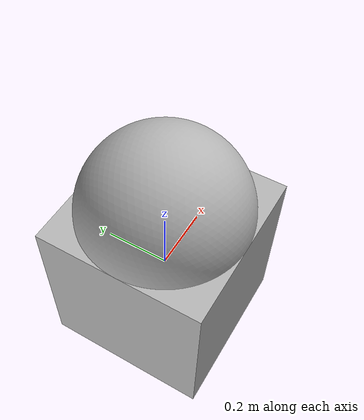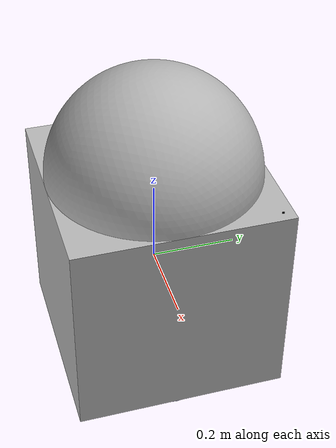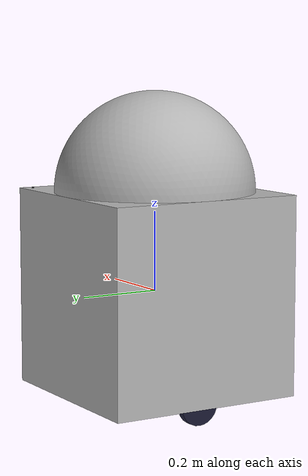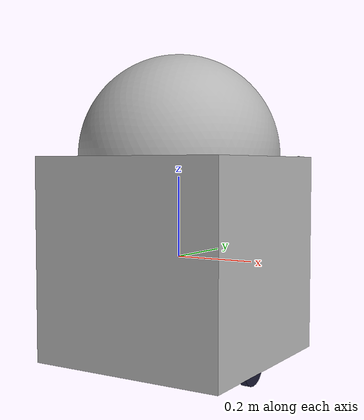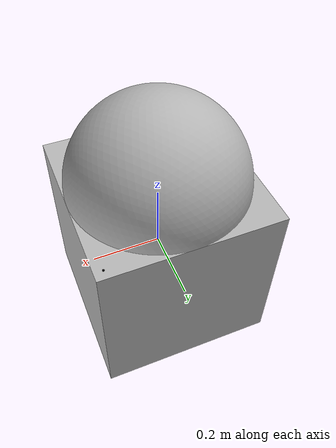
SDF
<?xml version="1.0"?>
<sdf version="1.6">
  <model name="Ogre Example">
    <static>true</static>
    <link name="body_link">
      <collision name="body_collision">
        <geometry>
          <box>
            <size>1 1 1</size>
          </box>
        </geometry>
      </collision>
      <visual name="wheel1_visual">
        <pose>-0.2 0 -0.25 0 1.57079 0</pose>
        <geometry>
          <cylinder>
            <radius>0.05</radius>
            <length>0.02</length>
          </cylinder>
        </geometry>
        <material> <!-- Wheel material -->
          <ambient>0.1 0.1 0.1 1</ambient>
          <diffuse>0.1 0.1 0.2 1</diffuse>
          <specular>0 0 0 0</specular>
          <emissive>0 0 0 1</emissive>
        </material> <!-- End wheel material -->
      </visual>
      <visual name="wheel2_visual">
        <pose>0.2 0 -0.25 0 1.57079 0</pose>
        <geometry>
          <cylinder>
            <radius>0.05</radius>
            <length>0.02</length>
          </cylinder>
        </geometry>
        <material>
          <ambient>0.1 0.1 0.1 1</ambient>
          <diffuse>0.1 0.1 0.2 1</diffuse>
          <specular>0 0 0 0</specular>
          <emissive>0 0 0 1</emissive>
        </material>
      </visual>
      <visual name="power_led_visual">
        <pose>0.225 0.225 0.25 0 0 0</pose>
        <geometry>
          <sphere>
            <radius>0.003</radius>
          </sphere>
        </geometry>
        <material> <!-- LED material -->
          <ambient>0 0 0 1</ambient>
          <diffuse>0 0 0 1</diffuse>
          <specular>0 0 0 0</specular>
          <emissive>0 1 0 1</emissive>
        </material> <!-- End LED material -->
      </visual>
      <visual name="body_visual">
        <geometry>
          <box>
            <size>0.5 0.5 0.5</size>
          </box>
        </geometry>
        <material> <!-- Body material -->
          <script>
            <uri>model://example_model/materials/scripts/repeated.material</uri>
            <name>RepeatedTexture</name>
          </script>
        </material> <!-- End Body Material -->
      </visual>
      <visual name="head_visual">
        <pose>0 0 0.25 0 0 -2.5</pose>
        <geometry>
          <mesh>
            <uri>model://example_model/meshes/head.dae</uri>
            <scale>0.25 0.25 0.25</scale>
          </mesh>
        </geometry>
      </visual> <!-- End head visual -->
    </link>
  </model>
</sdf>
